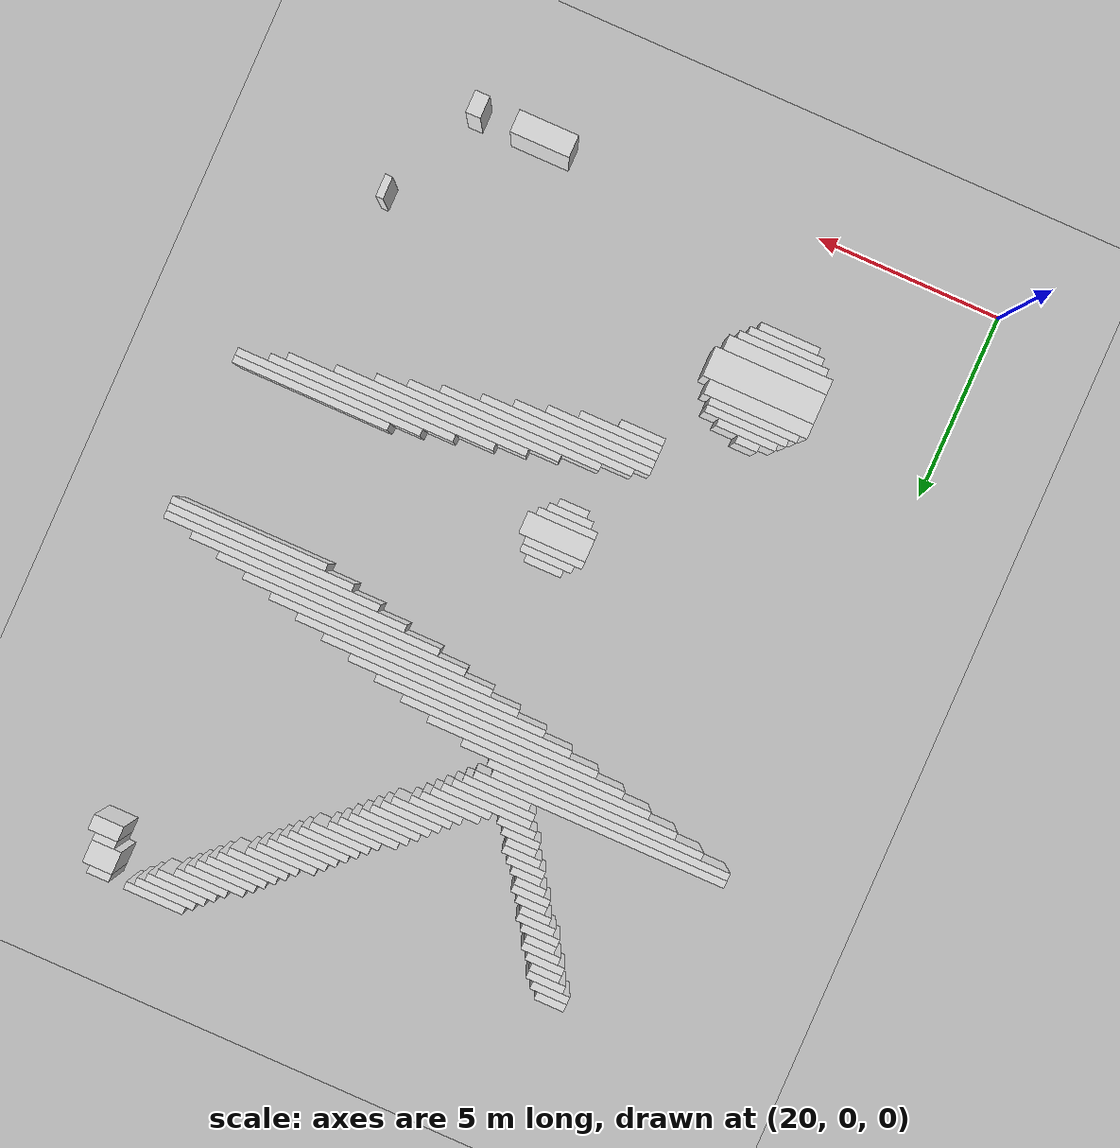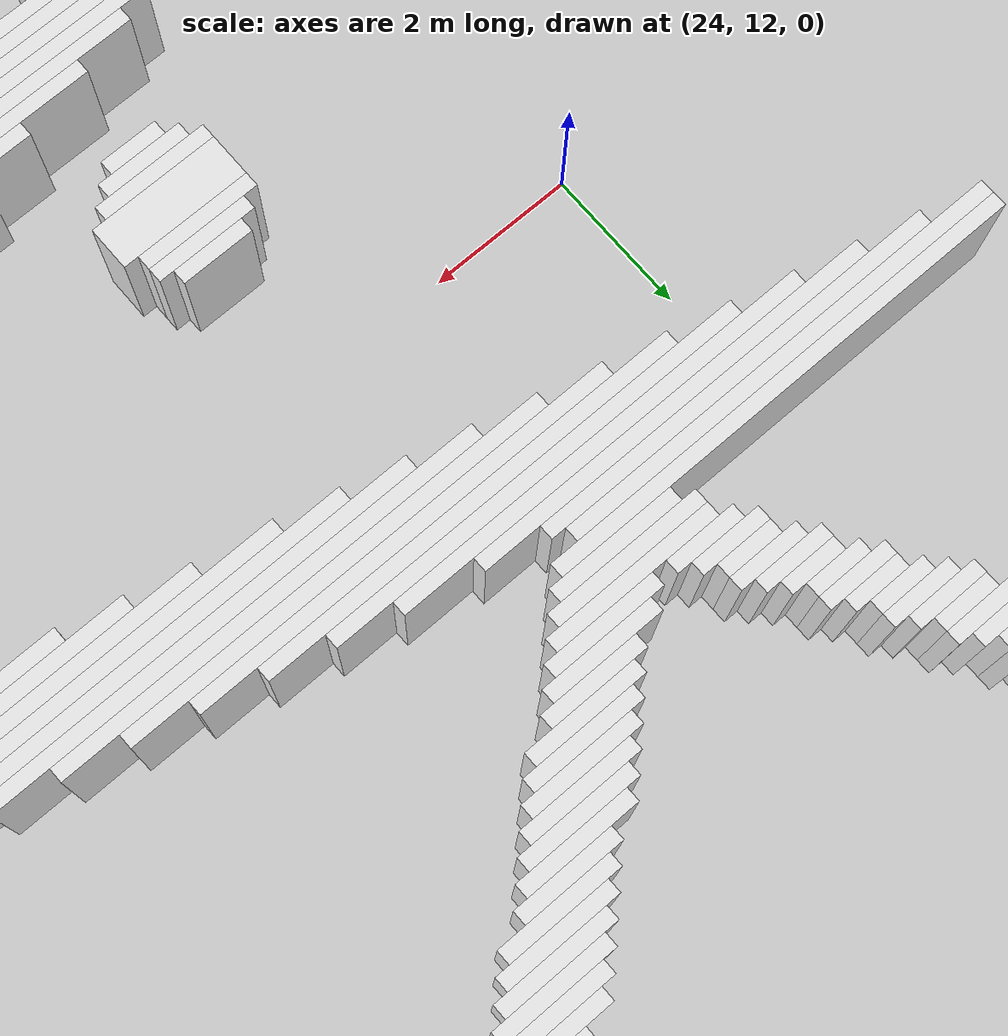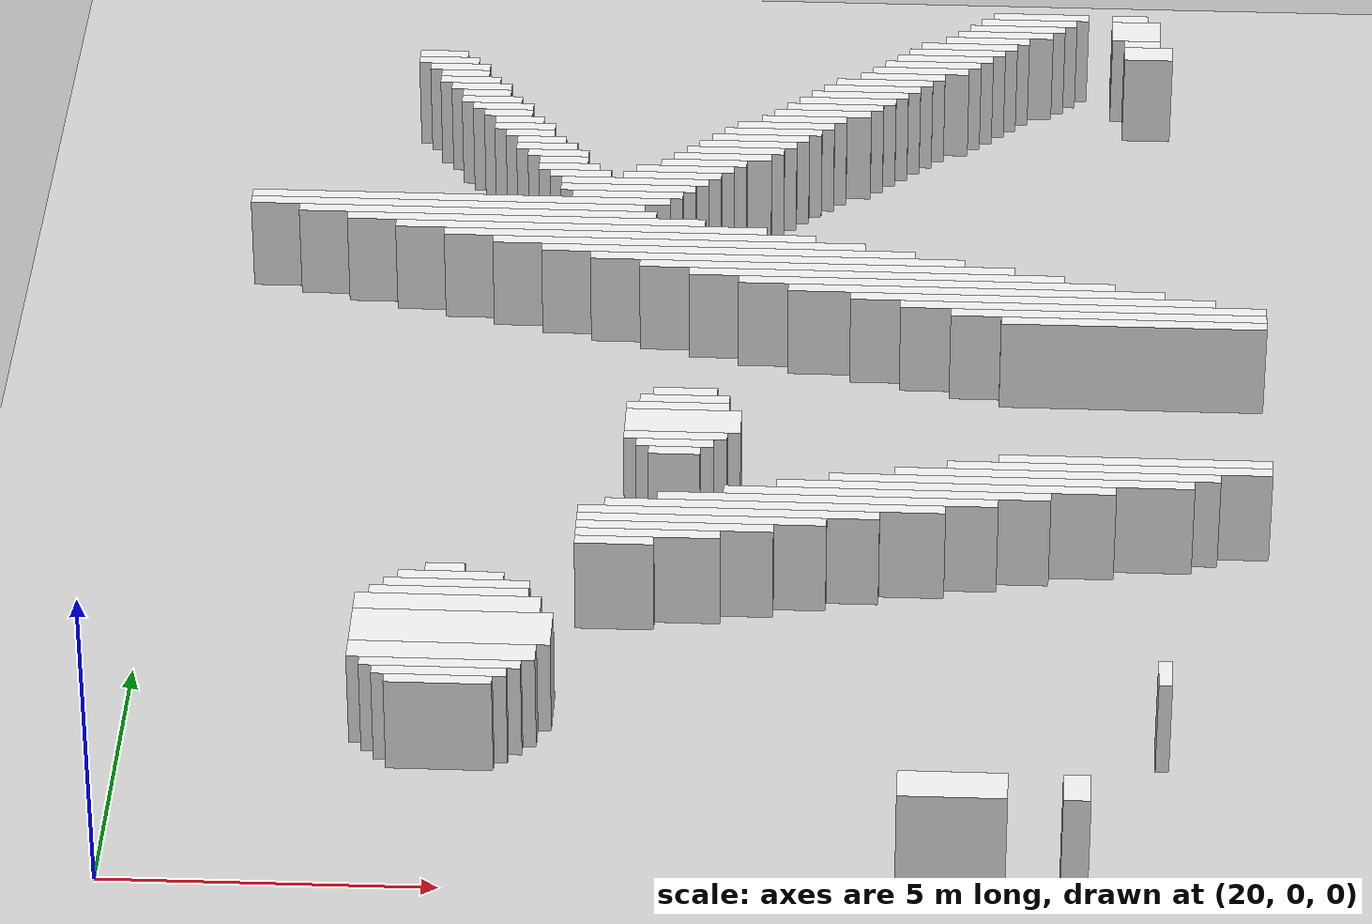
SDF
<sdf version="1.7">
 <world name="default">
  <model name="ground_plane">
   <static>1</static>
   <link name="link">
    <collision name="collision">
     <geometry><plane><normal>0 0 1</normal><size>120 120</size></plane></geometry>
    </collision>
    <visual name="visual">
     <geometry><plane><normal>0 0 1</normal><size>120 120</size></plane></geometry>
     <material>
      <script><uri>file://media/materials/scripts/gazebo.material</uri><name>Gazebo/Grey</name></script>
     </material>
    </visual>
   </link>
  </model>
  <model name="random_complex_03_model">
   <static>1</static>
   <link name="obs_858">
    <pose>33.6000 21.9000 0.8000 0 0 0</pose>
    <collision name="obs_858_col"><geometry><box><size>1.6000 0.2000 1.6000</size></box></geometry></collision>
    <visual name="obs_858_vis">
     <geometry><box><size>1.6000 0.2000 1.6000</size></box></geometry>
     <material>
      <script><uri>file://media/materials/scripts/gazebo.material</uri><name>Gazebo/White</name></script>
     </material>
    </visual>
   </link>
   <link name="obs_859">
    <pose>35.1000 21.9000 0.8000 0 0 0</pose>
    <collision name="obs_859_col"><geometry><box><size>0.6000 0.2000 1.6000</size></box></geometry></collision>
    <visual name="obs_859_vis">
     <geometry><box><size>0.6000 0.2000 1.6000</size></box></geometry>
     <material>
      <script><uri>file://media/materials/scripts/gazebo.material</uri><name>Gazebo/White</name></script>
     </material>
    </visual>
   </link>
   <link name="obs_867">
    <pose>33.4000 21.7000 0.8000 0 0 0</pose>
    <collision name="obs_867_col"><geometry><box><size>1.6000 0.2000 1.6000</size></box></geometry></collision>
    <visual name="obs_867_vis">
     <geometry><box><size>1.6000 0.2000 1.6000</size></box></geometry>
     <material>
      <script><uri>file://media/materials/scripts/gazebo.material</uri><name>Gazebo/White</name></script>
     </material>
    </visual>
   </link>
   <link name="obs_876">
    <pose>33.2000 21.5000 0.8000 0 0 0</pose>
    <collision name="obs_876_col"><geometry><box><size>1.6000 0.2000 1.6000</size></box></geometry></collision>
    <visual name="obs_876_vis">
     <geometry><box><size>1.6000 0.2000 1.6000</size></box></geometry>
     <material>
      <script><uri>file://media/materials/scripts/gazebo.material</uri><name>Gazebo/White</name></script>
     </material>
    </visual>
   </link>
   <link name="obs_878">
    <pose>35.2000 21.5000 0.8000 0 0 0</pose>
    <collision name="obs_878_col"><geometry><box><size>0.8000 0.6000 1.6000</size></box></geometry></collision>
    <visual name="obs_878_vis">
     <geometry><box><size>0.8000 0.6000 1.6000</size></box></geometry>
     <material>
      <script><uri>file://media/materials/scripts/gazebo.material</uri><name>Gazebo/White</name></script>
     </material>
    </visual>
   </link>
   <link name="obs_885">
    <pose>33.0000 21.3000 0.8000 0 0 0</pose>
    <collision name="obs_885_col"><geometry><box><size>1.6000 0.2000 1.6000</size></box></geometry></collision>
    <visual name="obs_885_vis">
     <geometry><box><size>1.6000 0.2000 1.6000</size></box></geometry>
     <material>
      <script><uri>file://media/materials/scripts/gazebo.material</uri><name>Gazebo/White</name></script>
     </material>
    </visual>
   </link>
   <link name="obs_895">
    <pose>32.7000 21.1000 0.8000 0 0 0</pose>
    <collision name="obs_895_col"><geometry><box><size>1.4000 0.2000 1.6000</size></box></geometry></collision>
    <visual name="obs_895_vis">
     <geometry><box><size>1.4000 0.2000 1.6000</size></box></geometry>
     <material>
      <script><uri>file://media/materials/scripts/gazebo.material</uri><name>Gazebo/White</name></script>
     </material>
    </visual>
   </link>
   <link name="obs_896">
    <pose>35.3000 21.1000 0.8000 0 0 0</pose>
    <collision name="obs_896_col"><geometry><box><size>0.6000 0.2000 1.6000</size></box></geometry></collision>
    <visual name="obs_896_vis">
     <geometry><box><size>0.6000 0.2000 1.6000</size></box></geometry>
     <material>
      <script><uri>file://media/materials/scripts/gazebo.material</uri><name>Gazebo/White</name></script>
     </material>
    </visual>
   </link>
   <link name="obs_907">
    <pose>32.4000 20.9000 0.8000 0 0 0</pose>
    <collision name="obs_907_col"><geometry><box><size>1.6000 0.2000 1.6000</size></box></geometry></collision>
    <visual name="obs_907_vis">
     <geometry><box><size>1.6000 0.2000 1.6000</size></box></geometry>
     <material>
      <script><uri>file://media/materials/scripts/gazebo.material</uri><name>Gazebo/White</name></script>
     </material>
    </visual>
   </link>
   <link name="obs_911">
    <pose>35.4000 20.8000 0.8000 0 0 0</pose>
    <collision name="obs_911_col"><geometry><box><size>0.8000 0.4000 1.6000</size></box></geometry></collision>
    <visual name="obs_911_vis">
     <geometry><box><size>0.8000 0.4000 1.6000</size></box></geometry>
     <material>
      <script><uri>file://media/materials/scripts/gazebo.material</uri><name>Gazebo/White</name></script>
     </material>
    </visual>
   </link>
   <link name="obs_918">
    <pose>32.2000 20.7000 0.8000 0 0 0</pose>
    <collision name="obs_918_col"><geometry><box><size>1.6000 0.2000 1.6000</size></box></geometry></collision>
    <visual name="obs_918_vis">
     <geometry><box><size>1.6000 0.2000 1.6000</size></box></geometry>
     <material>
      <script><uri>file://media/materials/scripts/gazebo.material</uri><name>Gazebo/White</name></script>
     </material>
    </visual>
   </link>
   <link name="obs_929">
    <pose>32.0000 20.5000 0.8000 0 0 0</pose>
    <collision name="obs_929_col"><geometry><box><size>1.6000 0.2000 1.6000</size></box></geometry></collision>
    <visual name="obs_929_vis">
     <geometry><box><size>1.6000 0.2000 1.6000</size></box></geometry>
     <material>
      <script><uri>file://media/materials/scripts/gazebo.material</uri><name>Gazebo/White</name></script>
     </material>
    </visual>
   </link>
   <link name="obs_939">
    <pose>23.6000 20.3000 0.8000 0 0 0</pose>
    <collision name="obs_939_col"><geometry><box><size>0.8000 0.2000 1.6000</size></box></geometry></collision>
    <visual name="obs_939_vis">
     <geometry><box><size>0.8000 0.2000 1.6000</size></box></geometry>
     <material>
      <script><uri>file://media/materials/scripts/gazebo.material</uri><name>Gazebo/White</name></script>
     </material>
    </visual>
   </link>
   <link name="obs_940">
    <pose>31.8000 20.3000 0.8000 0 0 0</pose>
    <collision name="obs_940_col"><geometry><box><size>1.6000 0.2000 1.6000</size></box></geometry></collision>
    <visual name="obs_940_vis">
     <geometry><box><size>1.6000 0.2000 1.6000</size></box></geometry>
     <material>
      <script><uri>file://media/materials/scripts/gazebo.material</uri><name>Gazebo/White</name></script>
     </material>
    </visual>
   </link>
   <link name="obs_949">
    <pose>23.7000 20.1000 0.8000 0 0 0</pose>
    <collision name="obs_949_col"><geometry><box><size>1.0000 0.2000 1.6000</size></box></geometry></collision>
    <visual name="obs_949_vis">
     <geometry><box><size>1.0000 0.2000 1.6000</size></box></geometry>
     <material>
      <script><uri>file://media/materials/scripts/gazebo.material</uri><name>Gazebo/White</name></script>
     </material>
    </visual>
   </link>
   <link name="obs_950">
    <pose>31.6000 20.1000 0.8000 0 0 0</pose>
    <collision name="obs_950_col"><geometry><box><size>1.6000 0.2000 1.6000</size></box></geometry></collision>
    <visual name="obs_950_vis">
     <geometry><box><size>1.6000 0.2000 1.6000</size></box></geometry>
     <material>
      <script><uri>file://media/materials/scripts/gazebo.material</uri><name>Gazebo/White</name></script>
     </material>
    </visual>
   </link>
   <link name="obs_961">
    <pose>23.9000 19.9000 0.8000 0 0 0</pose>
    <collision name="obs_961_col"><geometry><box><size>1.0000 0.2000 1.6000</size></box></geometry></collision>
    <visual name="obs_961_vis">
     <geometry><box><size>1.0000 0.2000 1.6000</size></box></geometry>
     <material>
      <script><uri>file://media/materials/scripts/gazebo.material</uri><name>Gazebo/White</name></script>
     </material>
    </visual>
   </link>
   <link name="obs_962">
    <pose>31.3000 19.9000 0.8000 0 0 0</pose>
    <collision name="obs_962_col"><geometry><box><size>1.4000 0.2000 1.6000</size></box></geometry></collision>
    <visual name="obs_962_vis">
     <geometry><box><size>1.4000 0.2000 1.6000</size></box></geometry>
     <material>
      <script><uri>file://media/materials/scripts/gazebo.material</uri><name>Gazebo/White</name></script>
     </material>
    </visual>
   </link>
   <link name="obs_973">
    <pose>24.0000 19.7000 0.8000 0 0 0</pose>
    <collision name="obs_973_col"><geometry><box><size>0.8000 0.2000 1.6000</size></box></geometry></collision>
    <visual name="obs_973_vis">
     <geometry><box><size>0.8000 0.2000 1.6000</size></box></geometry>
     <material>
      <script><uri>file://media/materials/scripts/gazebo.material</uri><name>Gazebo/White</name></script>
     </material>
    </visual>
   </link>
   <link name="obs_974">
    <pose>31.0000 19.7000 0.8000 0 0 0</pose>
    <collision name="obs_974_col"><geometry><box><size>1.6000 0.2000 1.6000</size></box></geometry></collision>
    <visual name="obs_974_vis">
     <geometry><box><size>1.6000 0.2000 1.6000</size></box></geometry>
     <material>
      <script><uri>file://media/materials/scripts/gazebo.material</uri><name>Gazebo/White</name></script>
     </material>
    </visual>
   </link>
   <link name="obs_984">
    <pose>24.1000 19.5000 0.8000 0 0 0</pose>
    <collision name="obs_984_col"><geometry><box><size>1.0000 0.2000 1.6000</size></box></geometry></collision>
    <visual name="obs_984_vis">
     <geometry><box><size>1.0000 0.2000 1.6000</size></box></geometry>
     <material>
      <script><uri>file://media/materials/scripts/gazebo.material</uri><name>Gazebo/White</name></script>
     </material>
    </visual>
   </link>
   <link name="obs_985">
    <pose>30.8000 19.5000 0.8000 0 0 0</pose>
    <collision name="obs_985_col"><geometry><box><size>1.6000 0.2000 1.6000</size></box></geometry></collision>
    <visual name="obs_985_vis">
     <geometry><box><size>1.6000 0.2000 1.6000</size></box></geometry>
     <material>
      <script><uri>file://media/materials/scripts/gazebo.material</uri><name>Gazebo/White</name></script>
     </material>
    </visual>
   </link>
   <link name="obs_992">
    <pose>24.3000 19.3000 0.8000 0 0 0</pose>
    <collision name="obs_992_col"><geometry><box><size>1.0000 0.2000 1.6000</size></box></geometry></collision>
    <visual name="obs_992_vis">
     <geometry><box><size>1.0000 0.2000 1.6000</size></box></geometry>
     <material>
      <script><uri>file://media/materials/scripts/gazebo.material</uri><name>Gazebo/White</name></script>
     </material>
    </visual>
   </link>
   <link name="obs_993">
    <pose>30.6000 19.3000 0.8000 0 0 0</pose>
    <collision name="obs_993_col"><geometry><box><size>1.6000 0.2000 1.6000</size></box></geometry></collision>
    <visual name="obs_993_vis">
     <geometry><box><size>1.6000 0.2000 1.6000</size></box></geometry>
     <material>
      <script><uri>file://media/materials/scripts/gazebo.material</uri><name>Gazebo/White</name></script>
     </material>
    </visual>
   </link>
   <link name="obs_1005">
    <pose>24.4000 19.1000 0.8000 0 0 0</pose>
    <collision name="obs_1005_col"><geometry><box><size>0.8000 0.2000 1.6000</size></box></geometry></collision>
    <visual name="obs_1005_vis">
     <geometry><box><size>0.8000 0.2000 1.6000</size></box></geometry>
     <material>
      <script><uri>file://media/materials/scripts/gazebo.material</uri><name>Gazebo/White</name></script>
     </material>
    </visual>
   </link>
   <link name="obs_1006">
    <pose>30.4000 19.1000 0.8000 0 0 0</pose>
    <collision name="obs_1006_col"><geometry><box><size>1.6000 0.2000 1.6000</size></box></geometry></collision>
    <visual name="obs_1006_vis">
     <geometry><box><size>1.6000 0.2000 1.6000</size></box></geometry>
     <material>
      <script><uri>file://media/materials/scripts/gazebo.material</uri><name>Gazebo/White</name></script>
     </material>
    </visual>
   </link>
   <link name="obs_1013">
    <pose>24.5000 18.9000 0.8000 0 0 0</pose>
    <collision name="obs_1013_col"><geometry><box><size>1.0000 0.2000 1.6000</size></box></geometry></collision>
    <visual name="obs_1013_vis">
     <geometry><box><size>1.0000 0.2000 1.6000</size></box></geometry>
     <material>
      <script><uri>file://media/materials/scripts/gazebo.material</uri><name>Gazebo/White</name></script>
     </material>
    </visual>
   </link>
   <link name="obs_1014">
    <pose>30.2000 18.9000 0.8000 0 0 0</pose>
    <collision name="obs_1014_col"><geometry><box><size>1.6000 0.2000 1.6000</size></box></geometry></collision>
    <visual name="obs_1014_vis">
     <geometry><box><size>1.6000 0.2000 1.6000</size></box></geometry>
     <material>
      <script><uri>file://media/materials/scripts/gazebo.material</uri><name>Gazebo/White</name></script>
     </material>
    </visual>
   </link>
   <link name="obs_1021">
    <pose>24.7000 18.7000 0.8000 0 0 0</pose>
    <collision name="obs_1021_col"><geometry><box><size>1.0000 0.2000 1.6000</size></box></geometry></collision>
    <visual name="obs_1021_vis">
     <geometry><box><size>1.0000 0.2000 1.6000</size></box></geometry>
     <material>
      <script><uri>file://media/materials/scripts/gazebo.material</uri><name>Gazebo/White</name></script>
     </material>
    </visual>
   </link>
   <link name="obs_1022">
    <pose>30.0000 18.7000 0.8000 0 0 0</pose>
    <collision name="obs_1022_col"><geometry><box><size>1.6000 0.2000 1.6000</size></box></geometry></collision>
    <visual name="obs_1022_vis">
     <geometry><box><size>1.6000 0.2000 1.6000</size></box></geometry>
     <material>
      <script><uri>file://media/materials/scripts/gazebo.material</uri><name>Gazebo/White</name></script>
     </material>
    </visual>
   </link>
   <link name="obs_1031">
    <pose>24.8000 18.5000 0.8000 0 0 0</pose>
    <collision name="obs_1031_col"><geometry><box><size>0.8000 0.2000 1.6000</size></box></geometry></collision>
    <visual name="obs_1031_vis">
     <geometry><box><size>0.8000 0.2000 1.6000</size></box></geometry>
     <material>
      <script><uri>file://media/materials/scripts/gazebo.material</uri><name>Gazebo/White</name></script>
     </material>
    </visual>
   </link>
   <link name="obs_1032">
    <pose>29.7000 18.5000 0.8000 0 0 0</pose>
    <collision name="obs_1032_col"><geometry><box><size>1.4000 0.2000 1.6000</size></box></geometry></collision>
    <visual name="obs_1032_vis">
     <geometry><box><size>1.4000 0.2000 1.6000</size></box></geometry>
     <material>
      <script><uri>file://media/materials/scripts/gazebo.material</uri><name>Gazebo/White</name></script>
     </material>
    </visual>
   </link>
   <link name="obs_1042">
    <pose>25.0000 18.3000 0.8000 0 0 0</pose>
    <collision name="obs_1042_col"><geometry><box><size>0.8000 0.2000 1.6000</size></box></geometry></collision>
    <visual name="obs_1042_vis">
     <geometry><box><size>0.8000 0.2000 1.6000</size></box></geometry>
     <material>
      <script><uri>file://media/materials/scripts/gazebo.material</uri><name>Gazebo/White</name></script>
     </material>
    </visual>
   </link>
   <link name="obs_1043">
    <pose>29.4000 18.3000 0.8000 0 0 0</pose>
    <collision name="obs_1043_col"><geometry><box><size>1.6000 0.2000 1.6000</size></box></geometry></collision>
    <visual name="obs_1043_vis">
     <geometry><box><size>1.6000 0.2000 1.6000</size></box></geometry>
     <material>
      <script><uri>file://media/materials/scripts/gazebo.material</uri><name>Gazebo/White</name></script>
     </material>
    </visual>
   </link>
   <link name="obs_1049">
    <pose>25.1000 18.1000 0.8000 0 0 0</pose>
    <collision name="obs_1049_col"><geometry><box><size>1.0000 0.2000 1.6000</size></box></geometry></collision>
    <visual name="obs_1049_vis">
     <geometry><box><size>1.0000 0.2000 1.6000</size></box></geometry>
     <material>
      <script><uri>file://media/materials/scripts/gazebo.material</uri><name>Gazebo/White</name></script>
     </material>
    </visual>
   </link>
   <link name="obs_1050">
    <pose>29.2000 18.1000 0.8000 0 0 0</pose>
    <collision name="obs_1050_col"><geometry><box><size>1.6000 0.2000 1.6000</size></box></geometry></collision>
    <visual name="obs_1050_vis">
     <geometry><box><size>1.6000 0.2000 1.6000</size></box></geometry>
     <material>
      <script><uri>file://media/materials/scripts/gazebo.material</uri><name>Gazebo/White</name></script>
     </material>
    </visual>
   </link>
   <link name="obs_1060">
    <pose>25.2000 17.9000 0.8000 0 0 0</pose>
    <collision name="obs_1060_col"><geometry><box><size>0.8000 0.2000 1.6000</size></box></geometry></collision>
    <visual name="obs_1060_vis">
     <geometry><box><size>0.8000 0.2000 1.6000</size></box></geometry>
     <material>
      <script><uri>file://media/materials/scripts/gazebo.material</uri><name>Gazebo/White</name></script>
     </material>
    </visual>
   </link>
   <link name="obs_1061">
    <pose>29.0000 17.9000 0.8000 0 0 0</pose>
    <collision name="obs_1061_col"><geometry><box><size>1.6000 0.2000 1.6000</size></box></geometry></collision>
    <visual name="obs_1061_vis">
     <geometry><box><size>1.6000 0.2000 1.6000</size></box></geometry>
     <material>
      <script><uri>file://media/materials/scripts/gazebo.material</uri><name>Gazebo/White</name></script>
     </material>
    </visual>
   </link>
   <link name="obs_1069">
    <pose>25.4000 17.7000 0.8000 0 0 0</pose>
    <collision name="obs_1069_col"><geometry><box><size>0.8000 0.2000 1.6000</size></box></geometry></collision>
    <visual name="obs_1069_vis">
     <geometry><box><size>0.8000 0.2000 1.6000</size></box></geometry>
     <material>
      <script><uri>file://media/materials/scripts/gazebo.material</uri><name>Gazebo/White</name></script>
     </material>
    </visual>
   </link>
   <link name="obs_1070">
    <pose>28.8000 17.7000 0.8000 0 0 0</pose>
    <collision name="obs_1070_col"><geometry><box><size>1.6000 0.2000 1.6000</size></box></geometry></collision>
    <visual name="obs_1070_vis">
     <geometry><box><size>1.6000 0.2000 1.6000</size></box></geometry>
     <material>
      <script><uri>file://media/materials/scripts/gazebo.material</uri><name>Gazebo/White</name></script>
     </material>
    </visual>
   </link>
   <link name="obs_1078">
    <pose>25.5000 17.5000 0.8000 0 0 0</pose>
    <collision name="obs_1078_col"><geometry><box><size>1.0000 0.2000 1.6000</size></box></geometry></collision>
    <visual name="obs_1078_vis">
     <geometry><box><size>1.0000 0.2000 1.6000</size></box></geometry>
     <material>
      <script><uri>file://media/materials/scripts/gazebo.material</uri><name>Gazebo/White</name></script>
     </material>
    </visual>
   </link>
   <link name="obs_1079">
    <pose>28.6000 17.5000 0.8000 0 0 0</pose>
    <collision name="obs_1079_col"><geometry><box><size>1.6000 0.2000 1.6000</size></box></geometry></collision>
    <visual name="obs_1079_vis">
     <geometry><box><size>1.6000 0.2000 1.6000</size></box></geometry>
     <material>
      <script><uri>file://media/materials/scripts/gazebo.material</uri><name>Gazebo/White</name></script>
     </material>
    </visual>
   </link>
   <link name="obs_1086">
    <pose>25.7000 17.3000 0.8000 0 0 0</pose>
    <collision name="obs_1086_col"><geometry><box><size>1.0000 0.2000 1.6000</size></box></geometry></collision>
    <visual name="obs_1086_vis">
     <geometry><box><size>1.0000 0.2000 1.6000</size></box></geometry>
     <material>
      <script><uri>file://media/materials/scripts/gazebo.material</uri><name>Gazebo/White</name></script>
     </material>
    </visual>
   </link>
   <link name="obs_1087">
    <pose>28.4000 17.3000 0.8000 0 0 0</pose>
    <collision name="obs_1087_col"><geometry><box><size>1.6000 0.2000 1.6000</size></box></geometry></collision>
    <visual name="obs_1087_vis">
     <geometry><box><size>1.6000 0.2000 1.6000</size></box></geometry>
     <material>
      <script><uri>file://media/materials/scripts/gazebo.material</uri><name>Gazebo/White</name></script>
     </material>
    </visual>
   </link>
   <link name="obs_1094">
    <pose>25.8000 17.1000 0.8000 0 0 0</pose>
    <collision name="obs_1094_col"><geometry><box><size>0.8000 0.2000 1.6000</size></box></geometry></collision>
    <visual name="obs_1094_vis">
     <geometry><box><size>0.8000 0.2000 1.6000</size></box></geometry>
     <material>
      <script><uri>file://media/materials/scripts/gazebo.material</uri><name>Gazebo/White</name></script>
     </material>
    </visual>
   </link>
   <link name="obs_1095">
    <pose>28.1000 17.1000 0.8000 0 0 0</pose>
    <collision name="obs_1095_col"><geometry><box><size>1.4000 0.2000 1.6000</size></box></geometry></collision>
    <visual name="obs_1095_vis">
     <geometry><box><size>1.4000 0.2000 1.6000</size></box></geometry>
     <material>
      <script><uri>file://media/materials/scripts/gazebo.material</uri><name>Gazebo/White</name></script>
     </material>
    </visual>
   </link>
   <link name="obs_1100">
    <pose>25.9000 16.9000 0.8000 0 0 0</pose>
    <collision name="obs_1100_col"><geometry><box><size>1.0000 0.2000 1.6000</size></box></geometry></collision>
    <visual name="obs_1100_vis">
     <geometry><box><size>1.0000 0.2000 1.6000</size></box></geometry>
     <material>
      <script><uri>file://media/materials/scripts/gazebo.material</uri><name>Gazebo/White</name></script>
     </material>
    </visual>
   </link>
   <link name="obs_1101">
    <pose>27.8000 16.9000 0.8000 0 0 0</pose>
    <collision name="obs_1101_col"><geometry><box><size>1.6000 0.2000 1.6000</size></box></geometry></collision>
    <visual name="obs_1101_vis">
     <geometry><box><size>1.6000 0.2000 1.6000</size></box></geometry>
     <material>
      <script><uri>file://media/materials/scripts/gazebo.material</uri><name>Gazebo/White</name></script>
     </material>
    </visual>
   </link>
   <link name="obs_1107">
    <pose>26.1000 16.7000 0.8000 0 0 0</pose>
    <collision name="obs_1107_col"><geometry><box><size>1.0000 0.2000 1.6000</size></box></geometry></collision>
    <visual name="obs_1107_vis">
     <geometry><box><size>1.0000 0.2000 1.6000</size></box></geometry>
     <material>
      <script><uri>file://media/materials/scripts/gazebo.material</uri><name>Gazebo/White</name></script>
     </material>
    </visual>
   </link>
   <link name="obs_1108">
    <pose>27.6000 16.7000 0.8000 0 0 0</pose>
    <collision name="obs_1108_col"><geometry><box><size>1.6000 0.2000 1.6000</size></box></geometry></collision>
    <visual name="obs_1108_vis">
     <geometry><box><size>1.6000 0.2000 1.6000</size></box></geometry>
     <material>
      <script><uri>file://media/materials/scripts/gazebo.material</uri><name>Gazebo/White</name></script>
     </material>
    </visual>
   </link>
   <link name="obs_1114">
    <pose>27.0000 16.5000 0.8000 0 0 0</pose>
    <collision name="obs_1114_col"><geometry><box><size>2.4000 0.2000 1.6000</size></box></geometry></collision>
    <visual name="obs_1114_vis">
     <geometry><box><size>2.4000 0.2000 1.6000</size></box></geometry>
     <material>
      <script><uri>file://media/materials/scripts/gazebo.material</uri><name>Gazebo/White</name></script>
     </material>
    </visual>
   </link>
   <link name="obs_1120">
    <pose>26.9000 16.3000 0.8000 0 0 0</pose>
    <collision name="obs_1120_col"><geometry><box><size>2.2000 0.2000 1.6000</size></box></geometry></collision>
    <visual name="obs_1120_vis">
     <geometry><box><size>2.2000 0.2000 1.6000</size></box></geometry>
     <material>
      <script><uri>file://media/materials/scripts/gazebo.material</uri><name>Gazebo/White</name></script>
     </material>
    </visual>
   </link>
   <link name="obs_1126">
    <pose>26.9000 16.1000 0.8000 0 0 0</pose>
    <collision name="obs_1126_col"><geometry><box><size>1.8000 0.2000 1.6000</size></box></geometry></collision>
    <visual name="obs_1126_vis">
     <geometry><box><size>1.8000 0.2000 1.6000</size></box></geometry>
     <material>
      <script><uri>file://media/materials/scripts/gazebo.material</uri><name>Gazebo/White</name></script>
     </material>
    </visual>
   </link>
   <link name="obs_1133">
    <pose>24.2000 15.9000 0.8000 0 0 0</pose>
    <collision name="obs_1133_col"><geometry><box><size>6.8000 0.2000 1.6000</size></box></geometry></collision>
    <visual name="obs_1133_vis">
     <geometry><box><size>6.8000 0.2000 1.6000</size></box></geometry>
     <material>
      <script><uri>file://media/materials/scripts/gazebo.material</uri><name>Gazebo/White</name></script>
     </material>
    </visual>
   </link>
   <link name="obs_1138">
    <pose>24.0000 15.7000 0.8000 0 0 0</pose>
    <collision name="obs_1138_col"><geometry><box><size>6.4000 0.2000 1.6000</size></box></geometry></collision>
    <visual name="obs_1138_vis">
     <geometry><box><size>6.4000 0.2000 1.6000</size></box></geometry>
     <material>
      <script><uri>file://media/materials/scripts/gazebo.material</uri><name>Gazebo/White</name></script>
     </material>
    </visual>
   </link>
   <link name="obs_1141">
    <pose>24.5000 15.5000 0.8000 0 0 0</pose>
    <collision name="obs_1141_col"><geometry><box><size>5.8000 0.2000 1.6000</size></box></geometry></collision>
    <visual name="obs_1141_vis">
     <geometry><box><size>5.8000 0.2000 1.6000</size></box></geometry>
     <material>
      <script><uri>file://media/materials/scripts/gazebo.material</uri><name>Gazebo/White</name></script>
     </material>
    </visual>
   </link>
   <link name="obs_1146">
    <pose>25.3000 15.3000 0.8000 0 0 0</pose>
    <collision name="obs_1146_col"><geometry><box><size>5.8000 0.2000 1.6000</size></box></geometry></collision>
    <visual name="obs_1146_vis">
     <geometry><box><size>5.8000 0.2000 1.6000</size></box></geometry>
     <material>
      <script><uri>file://media/materials/scripts/gazebo.material</uri><name>Gazebo/White</name></script>
     </material>
    </visual>
   </link>
   <link name="obs_1150">
    <pose>26.2000 15.1000 0.8000 0 0 0</pose>
    <collision name="obs_1150_col"><geometry><box><size>6.0000 0.2000 1.6000</size></box></geometry></collision>
    <visual name="obs_1150_vis">
     <geometry><box><size>6.0000 0.2000 1.6000</size></box></geometry>
     <material>
      <script><uri>file://media/materials/scripts/gazebo.material</uri><name>Gazebo/White</name></script>
     </material>
    </visual>
   </link>
   <link name="obs_1154">
    <pose>27.0000 14.9000 0.8000 0 0 0</pose>
    <collision name="obs_1154_col"><geometry><box><size>6.0000 0.2000 1.6000</size></box></geometry></collision>
    <visual name="obs_1154_vis">
     <geometry><box><size>6.0000 0.2000 1.6000</size></box></geometry>
     <material>
      <script><uri>file://media/materials/scripts/gazebo.material</uri><name>Gazebo/White</name></script>
     </material>
    </visual>
   </link>
   <link name="obs_1160">
    <pose>27.8000 14.7000 0.8000 0 0 0</pose>
    <collision name="obs_1160_col"><geometry><box><size>6.0000 0.2000 1.6000</size></box></geometry></collision>
    <visual name="obs_1160_vis">
     <geometry><box><size>6.0000 0.2000 1.6000</size></box></geometry>
     <material>
      <script><uri>file://media/materials/scripts/gazebo.material</uri><name>Gazebo/White</name></script>
     </material>
    </visual>
   </link>
   <link name="obs_1167">
    <pose>28.6000 14.5000 0.8000 0 0 0</pose>
    <collision name="obs_1167_col"><geometry><box><size>6.0000 0.2000 1.6000</size></box></geometry></collision>
    <visual name="obs_1167_vis">
     <geometry><box><size>6.0000 0.2000 1.6000</size></box></geometry>
     <material>
      <script><uri>file://media/materials/scripts/gazebo.material</uri><name>Gazebo/White</name></script>
     </material>
    </visual>
   </link>
   <link name="obs_1172">
    <pose>29.4000 14.3000 0.8000 0 0 0</pose>
    <collision name="obs_1172_col"><geometry><box><size>6.0000 0.2000 1.6000</size></box></geometry></collision>
    <visual name="obs_1172_vis">
     <geometry><box><size>6.0000 0.2000 1.6000</size></box></geometry>
     <material>
      <script><uri>file://media/materials/scripts/gazebo.material</uri><name>Gazebo/White</name></script>
     </material>
    </visual>
   </link>
   <link name="obs_1176">
    <pose>30.2000 14.1000 0.8000 0 0 0</pose>
    <collision name="obs_1176_col"><geometry><box><size>6.0000 0.2000 1.6000</size></box></geometry></collision>
    <visual name="obs_1176_vis">
     <geometry><box><size>6.0000 0.2000 1.6000</size></box></geometry>
     <material>
      <script><uri>file://media/materials/scripts/gazebo.material</uri><name>Gazebo/White</name></script>
     </material>
    </visual>
   </link>
   <link name="obs_1180">
    <pose>31.0000 13.9000 0.8000 0 0 0</pose>
    <collision name="obs_1180_col"><geometry><box><size>6.0000 0.2000 1.6000</size></box></geometry></collision>
    <visual name="obs_1180_vis">
     <geometry><box><size>6.0000 0.2000 1.6000</size></box></geometry>
     <material>
      <script><uri>file://media/materials/scripts/gazebo.material</uri><name>Gazebo/White</name></script>
     </material>
    </visual>
   </link>
   <link name="obs_1183">
    <pose>31.8000 13.7000 0.8000 0 0 0</pose>
    <collision name="obs_1183_col"><geometry><box><size>6.0000 0.2000 1.6000</size></box></geometry></collision>
    <visual name="obs_1183_vis">
     <geometry><box><size>6.0000 0.2000 1.6000</size></box></geometry>
     <material>
      <script><uri>file://media/materials/scripts/gazebo.material</uri><name>Gazebo/White</name></script>
     </material>
    </visual>
   </link>
   <link name="obs_1188">
    <pose>32.6000 13.5000 0.8000 0 0 0</pose>
    <collision name="obs_1188_col"><geometry><box><size>6.0000 0.2000 1.6000</size></box></geometry></collision>
    <visual name="obs_1188_vis">
     <geometry><box><size>6.0000 0.2000 1.6000</size></box></geometry>
     <material>
      <script><uri>file://media/materials/scripts/gazebo.material</uri><name>Gazebo/White</name></script>
     </material>
    </visual>
   </link>
   <link name="obs_1196">
    <pose>33.5000 13.3000 0.8000 0 0 0</pose>
    <collision name="obs_1196_col"><geometry><box><size>5.8000 0.2000 1.6000</size></box></geometry></collision>
    <visual name="obs_1196_vis">
     <geometry><box><size>5.8000 0.2000 1.6000</size></box></geometry>
     <material>
      <script><uri>file://media/materials/scripts/gazebo.material</uri><name>Gazebo/White</name></script>
     </material>
    </visual>
   </link>
   <link name="obs_1201">
    <pose>34.3000 13.1000 0.8000 0 0 0</pose>
    <collision name="obs_1201_col"><geometry><box><size>5.8000 0.2000 1.6000</size></box></geometry></collision>
    <visual name="obs_1201_vis">
     <geometry><box><size>5.8000 0.2000 1.6000</size></box></geometry>
     <material>
      <script><uri>file://media/materials/scripts/gazebo.material</uri><name>Gazebo/White</name></script>
     </material>
    </visual>
   </link>
   <link name="obs_1205">
    <pose>34.7000 12.9000 0.8000 0 0 0</pose>
    <collision name="obs_1205_col"><geometry><box><size>5.0000 0.2000 1.6000</size></box></geometry></collision>
    <visual name="obs_1205_vis">
     <geometry><box><size>5.0000 0.2000 1.6000</size></box></geometry>
     <material>
      <script><uri>file://media/materials/scripts/gazebo.material</uri><name>Gazebo/White</name></script>
     </material>
    </visual>
   </link>
   <link name="obs_1211">
    <pose>35.1000 12.7000 0.8000 0 0 0</pose>
    <collision name="obs_1211_col"><geometry><box><size>4.2000 0.2000 1.6000</size></box></geometry></collision>
    <visual name="obs_1211_vis">
     <geometry><box><size>4.2000 0.2000 1.6000</size></box></geometry>
     <material>
      <script><uri>file://media/materials/scripts/gazebo.material</uri><name>Gazebo/White</name></script>
     </material>
    </visual>
   </link>
   <link name="obs_1284">
    <pose>28.1000 10.5000 0.8000 0 0 0</pose>
    <collision name="obs_1284_col"><geometry><box><size>1.0000 0.2000 1.6000</size></box></geometry></collision>
    <visual name="obs_1284_vis">
     <geometry><box><size>1.0000 0.2000 1.6000</size></box></geometry>
     <material>
      <script><uri>file://media/materials/scripts/gazebo.material</uri><name>Gazebo/White</name></script>
     </material>
    </visual>
   </link>
   <link name="obs_1295">
    <pose>28.1000 10.3000 0.8000 0 0 0</pose>
    <collision name="obs_1295_col"><geometry><box><size>1.4000 0.2000 1.6000</size></box></geometry></collision>
    <visual name="obs_1295_vis">
     <geometry><box><size>1.4000 0.2000 1.6000</size></box></geometry>
     <material>
      <script><uri>file://media/materials/scripts/gazebo.material</uri><name>Gazebo/White</name></script>
     </material>
    </visual>
   </link>
   <link name="obs_1306">
    <pose>28.0000 10.1000 0.8000 0 0 0</pose>
    <collision name="obs_1306_col"><geometry><box><size>1.6000 0.2000 1.6000</size></box></geometry></collision>
    <visual name="obs_1306_vis">
     <geometry><box><size>1.6000 0.2000 1.6000</size></box></geometry>
     <material>
      <script><uri>file://media/materials/scripts/gazebo.material</uri><name>Gazebo/White</name></script>
     </material>
    </visual>
   </link>
   <link name="obs_1324">
    <pose>28.1000 9.7000 0.8000 0 0 0</pose>
    <collision name="obs_1324_col"><geometry><box><size>1.8000 0.6000 1.6000</size></box></geometry></collision>
    <visual name="obs_1324_vis">
     <geometry><box><size>1.8000 0.6000 1.6000</size></box></geometry>
     <material>
      <script><uri>file://media/materials/scripts/gazebo.material</uri><name>Gazebo/White</name></script>
     </material>
    </visual>
   </link>
   <link name="obs_1342">
    <pose>28.0000 9.3000 0.8000 0 0 0</pose>
    <collision name="obs_1342_col"><geometry><box><size>1.6000 0.2000 1.6000</size></box></geometry></collision>
    <visual name="obs_1342_vis">
     <geometry><box><size>1.6000 0.2000 1.6000</size></box></geometry>
     <material>
      <script><uri>file://media/materials/scripts/gazebo.material</uri><name>Gazebo/White</name></script>
     </material>
    </visual>
   </link>
   <link name="obs_1348">
    <pose>28.0000 9.1000 0.8000 0 0 0</pose>
    <collision name="obs_1348_col"><geometry><box><size>1.2000 0.2000 1.6000</size></box></geometry></collision>
    <visual name="obs_1348_vis">
     <geometry><box><size>1.2000 0.2000 1.6000</size></box></geometry>
     <material>
      <script><uri>file://media/materials/scripts/gazebo.material</uri><name>Gazebo/White</name></script>
     </material>
    </visual>
   </link>
   <link name="obs_1357">
    <pose>28.0000 8.9000 0.8000 0 0 0</pose>
    <collision name="obs_1357_col"><geometry><box><size>0.8000 0.2000 1.6000</size></box></geometry></collision>
    <visual name="obs_1357_vis">
     <geometry><box><size>0.8000 0.2000 1.6000</size></box></geometry>
     <material>
      <script><uri>file://media/materials/scripts/gazebo.material</uri><name>Gazebo/White</name></script>
     </material>
    </visual>
   </link>
   <link name="obs_1358">
    <pose>35.1000 8.9000 0.8000 0 0 0</pose>
    <collision name="obs_1358_col"><geometry><box><size>4.2000 0.2000 1.6000</size></box></geometry></collision>
    <visual name="obs_1358_vis">
     <geometry><box><size>4.2000 0.2000 1.6000</size></box></geometry>
     <material>
      <script><uri>file://media/materials/scripts/gazebo.material</uri><name>Gazebo/White</name></script>
     </material>
    </visual>
   </link>
   <link name="obs_1364">
    <pose>34.7000 8.7000 0.8000 0 0 0</pose>
    <collision name="obs_1364_col"><geometry><box><size>5.0000 0.2000 1.6000</size></box></geometry></collision>
    <visual name="obs_1364_vis">
     <geometry><box><size>5.0000 0.2000 1.6000</size></box></geometry>
     <material>
      <script><uri>file://media/materials/scripts/gazebo.material</uri><name>Gazebo/White</name></script>
     </material>
    </visual>
   </link>
   <link name="obs_1372">
    <pose>33.9000 8.5000 0.8000 0 0 0</pose>
    <collision name="obs_1372_col"><geometry><box><size>5.0000 0.2000 1.6000</size></box></geometry></collision>
    <visual name="obs_1372_vis">
     <geometry><box><size>5.0000 0.2000 1.6000</size></box></geometry>
     <material>
      <script><uri>file://media/materials/scripts/gazebo.material</uri><name>Gazebo/White</name></script>
     </material>
    </visual>
   </link>
   <link name="obs_1379">
    <pose>33.2000 8.3000 0.8000 0 0 0</pose>
    <collision name="obs_1379_col"><geometry><box><size>5.6000 0.2000 1.6000</size></box></geometry></collision>
    <visual name="obs_1379_vis">
     <geometry><box><size>5.6000 0.2000 1.6000</size></box></geometry>
     <material>
      <script><uri>file://media/materials/scripts/gazebo.material</uri><name>Gazebo/White</name></script>
     </material>
    </visual>
   </link>
   <link name="obs_1386">
    <pose>32.2000 8.1000 0.8000 0 0 0</pose>
    <collision name="obs_1386_col"><geometry><box><size>5.2000 0.2000 1.6000</size></box></geometry></collision>
    <visual name="obs_1386_vis">
     <geometry><box><size>5.2000 0.2000 1.6000</size></box></geometry>
     <material>
      <script><uri>file://media/materials/scripts/gazebo.material</uri><name>Gazebo/White</name></script>
     </material>
    </visual>
   </link>
   <link name="obs_1393">
    <pose>31.3000 7.9000 0.8000 0 0 0</pose>
    <collision name="obs_1393_col"><geometry><box><size>5.0000 0.2000 1.6000</size></box></geometry></collision>
    <visual name="obs_1393_vis">
     <geometry><box><size>5.0000 0.2000 1.6000</size></box></geometry>
     <material>
      <script><uri>file://media/materials/scripts/gazebo.material</uri><name>Gazebo/White</name></script>
     </material>
    </visual>
   </link>
   <link name="obs_1396">
    <pose>30.4000 7.7000 0.8000 0 0 0</pose>
    <collision name="obs_1396_col"><geometry><box><size>5.2000 0.2000 1.6000</size></box></geometry></collision>
    <visual name="obs_1396_vis">
     <geometry><box><size>5.2000 0.2000 1.6000</size></box></geometry>
     <material>
      <script><uri>file://media/materials/scripts/gazebo.material</uri><name>Gazebo/White</name></script>
     </material>
    </visual>
   </link>
   <link name="obs_1405">
    <pose>29.6000 7.5000 0.8000 0 0 0</pose>
    <collision name="obs_1405_col"><geometry><box><size>5.2000 0.2000 1.6000</size></box></geometry></collision>
    <visual name="obs_1405_vis">
     <geometry><box><size>5.2000 0.2000 1.6000</size></box></geometry>
     <material>
      <script><uri>file://media/materials/scripts/gazebo.material</uri><name>Gazebo/White</name></script>
     </material>
    </visual>
   </link>
   <link name="obs_1414">
    <pose>28.9000 7.3000 0.8000 0 0 0</pose>
    <collision name="obs_1414_col"><geometry><box><size>4.6000 0.2000 1.6000</size></box></geometry></collision>
    <visual name="obs_1414_vis">
     <geometry><box><size>4.6000 0.2000 1.6000</size></box></geometry>
     <material>
      <script><uri>file://media/materials/scripts/gazebo.material</uri><name>Gazebo/White</name></script>
     </material>
    </visual>
   </link>
   <link name="obs_1419">
    <pose>28.5000 7.1000 0.8000 0 0 0</pose>
    <collision name="obs_1419_col"><geometry><box><size>3.8000 0.2000 1.6000</size></box></geometry></collision>
    <visual name="obs_1419_vis">
     <geometry><box><size>3.8000 0.2000 1.6000</size></box></geometry>
     <material>
      <script><uri>file://media/materials/scripts/gazebo.material</uri><name>Gazebo/White</name></script>
     </material>
    </visual>
   </link>
   <link name="obs_1426">
    <pose>28.1000 6.9000 0.8000 0 0 0</pose>
    <collision name="obs_1426_col"><geometry><box><size>3.0000 0.2000 1.6000</size></box></geometry></collision>
    <visual name="obs_1426_vis">
     <geometry><box><size>3.0000 0.2000 1.6000</size></box></geometry>
     <material>
      <script><uri>file://media/materials/scripts/gazebo.material</uri><name>Gazebo/White</name></script>
     </material>
    </visual>
   </link>
   <link name="obs_1435">
    <pose>27.7000 6.7000 0.8000 0 0 0</pose>
    <collision name="obs_1435_col"><geometry><box><size>2.2000 0.2000 1.6000</size></box></geometry></collision>
    <visual name="obs_1435_vis">
     <geometry><box><size>2.2000 0.2000 1.6000</size></box></geometry>
     <material>
      <script><uri>file://media/materials/scripts/gazebo.material</uri><name>Gazebo/White</name></script>
     </material>
    </visual>
   </link>
   <link name="obs_1440">
    <pose>27.2000 6.5000 0.8000 0 0 0</pose>
    <collision name="obs_1440_col"><geometry><box><size>1.2000 0.2000 1.6000</size></box></geometry></collision>
    <visual name="obs_1440_vis">
     <geometry><box><size>1.2000 0.2000 1.6000</size></box></geometry>
     <material>
      <script><uri>file://media/materials/scripts/gazebo.material</uri><name>Gazebo/White</name></script>
     </material>
    </visual>
   </link>
   <link name="obs_1466">
    <pose>24.7000 5.7000 0.8000 0 0 0</pose>
    <collision name="obs_1466_col"><geometry><box><size>0.6000 0.2000 1.6000</size></box></geometry></collision>
    <visual name="obs_1466_vis">
     <geometry><box><size>0.6000 0.2000 1.6000</size></box></geometry>
     <material>
      <script><uri>file://media/materials/scripts/gazebo.material</uri><name>Gazebo/White</name></script>
     </material>
    </visual>
   </link>
   <link name="obs_1477">
    <pose>24.8000 5.5000 0.8000 0 0 0</pose>
    <collision name="obs_1477_col"><geometry><box><size>1.6000 0.2000 1.6000</size></box></geometry></collision>
    <visual name="obs_1477_vis">
     <geometry><box><size>1.6000 0.2000 1.6000</size></box></geometry>
     <material>
      <script><uri>file://media/materials/scripts/gazebo.material</uri><name>Gazebo/White</name></script>
     </material>
    </visual>
   </link>
   <link name="obs_1486">
    <pose>24.9000 5.3000 0.8000 0 0 0</pose>
    <collision name="obs_1486_col"><geometry><box><size>2.2000 0.2000 1.6000</size></box></geometry></collision>
    <visual name="obs_1486_vis">
     <geometry><box><size>2.2000 0.2000 1.6000</size></box></geometry>
     <material>
      <script><uri>file://media/materials/scripts/gazebo.material</uri><name>Gazebo/White</name></script>
     </material>
    </visual>
   </link>
   <link name="obs_1492">
    <pose>24.8000 5.1000 0.8000 0 0 0</pose>
    <collision name="obs_1492_col"><geometry><box><size>2.4000 0.2000 1.6000</size></box></geometry></collision>
    <visual name="obs_1492_vis">
     <geometry><box><size>2.4000 0.2000 1.6000</size></box></geometry>
     <material>
      <script><uri>file://media/materials/scripts/gazebo.material</uri><name>Gazebo/White</name></script>
     </material>
    </visual>
   </link>
   <link name="obs_1503">
    <pose>24.8000 4.8000 0.8000 0 0 0</pose>
    <collision name="obs_1503_col"><geometry><box><size>2.8000 0.4000 1.6000</size></box></geometry></collision>
    <visual name="obs_1503_vis">
     <geometry><box><size>2.8000 0.4000 1.6000</size></box></geometry>
     <material>
      <script><uri>file://media/materials/scripts/gazebo.material</uri><name>Gazebo/White</name></script>
     </material>
    </visual>
   </link>
   <link name="obs_1521">
    <pose>24.9000 4.2000 0.8000 0 0 0</pose>
    <collision name="obs_1521_col"><geometry><box><size>3.0000 0.8000 1.6000</size></box></geometry></collision>
    <visual name="obs_1521_vis">
     <geometry><box><size>3.0000 0.8000 1.6000</size></box></geometry>
     <material>
      <script><uri>file://media/materials/scripts/gazebo.material</uri><name>Gazebo/White</name></script>
     </material>
    </visual>
   </link>
   <link name="obs_1529">
    <pose>24.8000 3.6000 0.8000 0 0 0</pose>
    <collision name="obs_1529_col"><geometry><box><size>2.8000 0.4000 1.6000</size></box></geometry></collision>
    <visual name="obs_1529_vis">
     <geometry><box><size>2.8000 0.4000 1.6000</size></box></geometry>
     <material>
      <script><uri>file://media/materials/scripts/gazebo.material</uri><name>Gazebo/White</name></script>
     </material>
    </visual>
   </link>
   <link name="obs_1536">
    <pose>35.5000 3.5000 0.8000 0 0 0</pose>
    <collision name="obs_1536_col"><geometry><box><size>0.2000 0.6000 1.6000</size></box></geometry></collision>
    <visual name="obs_1536_vis">
     <geometry><box><size>0.2000 0.6000 1.6000</size></box></geometry>
     <material>
      <script><uri>file://media/materials/scripts/gazebo.material</uri><name>Gazebo/White</name></script>
     </material>
    </visual>
   </link>
   <link name="obs_1541">
    <pose>24.8000 3.3000 0.8000 0 0 0</pose>
    <collision name="obs_1541_col"><geometry><box><size>2.4000 0.2000 1.6000</size></box></geometry></collision>
    <visual name="obs_1541_vis">
     <geometry><box><size>2.4000 0.2000 1.6000</size></box></geometry>
     <material>
      <script><uri>file://media/materials/scripts/gazebo.material</uri><name>Gazebo/White</name></script>
     </material>
    </visual>
   </link>
   <link name="obs_1542">
    <pose>24.8000 3.1000 0.8000 0 0 0</pose>
    <collision name="obs_1542_col"><geometry><box><size>2.0000 0.2000 1.6000</size></box></geometry></collision>
    <visual name="obs_1542_vis">
     <geometry><box><size>2.0000 0.2000 1.6000</size></box></geometry>
     <material>
      <script><uri>file://media/materials/scripts/gazebo.material</uri><name>Gazebo/White</name></script>
     </material>
    </visual>
   </link>
   <link name="obs_1544">
    <pose>24.8000 2.9000 0.8000 0 0 0</pose>
    <collision name="obs_1544_col"><geometry><box><size>1.6000 0.2000 1.6000</size></box></geometry></collision>
    <visual name="obs_1544_vis">
     <geometry><box><size>1.6000 0.2000 1.6000</size></box></geometry>
     <material>
      <script><uri>file://media/materials/scripts/gazebo.material</uri><name>Gazebo/White</name></script>
     </material>
    </visual>
   </link>
   <link name="obs_1602">
    <pose>32.4000 0.7000 0.8000 0 0 0</pose>
    <collision name="obs_1602_col"><geometry><box><size>1.6000 0.6000 1.6000</size></box></geometry></collision>
    <visual name="obs_1602_vis">
     <geometry><box><size>1.6000 0.6000 1.6000</size></box></geometry>
     <material>
      <script><uri>file://media/materials/scripts/gazebo.material</uri><name>Gazebo/White</name></script>
     </material>
    </visual>
   </link>
   <link name="obs_1603">
    <pose>34.2000 0.7000 0.8000 0 0 0</pose>
    <collision name="obs_1603_col"><geometry><box><size>0.4000 0.6000 1.6000</size></box></geometry></collision>
    <visual name="obs_1603_vis">
     <geometry><box><size>0.4000 0.6000 1.6000</size></box></geometry>
     <material>
      <script><uri>file://media/materials/scripts/gazebo.material</uri><name>Gazebo/White</name></script>
     </material>
    </visual>
   </link>
  </model>
 </world>
</sdf>
